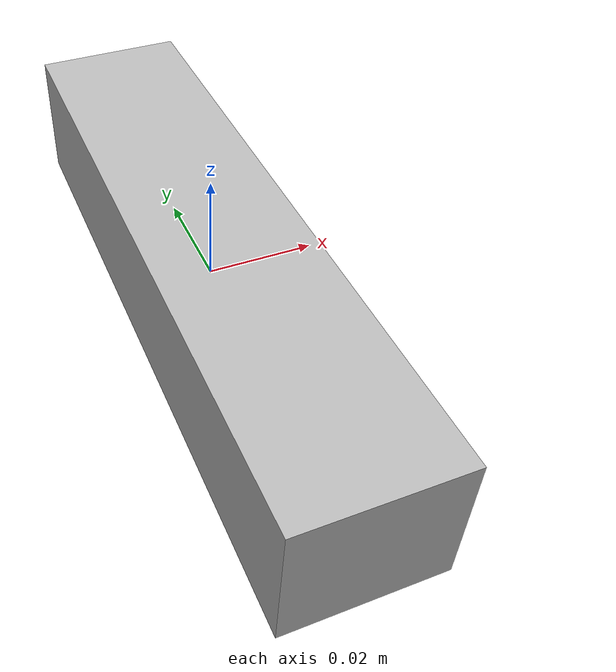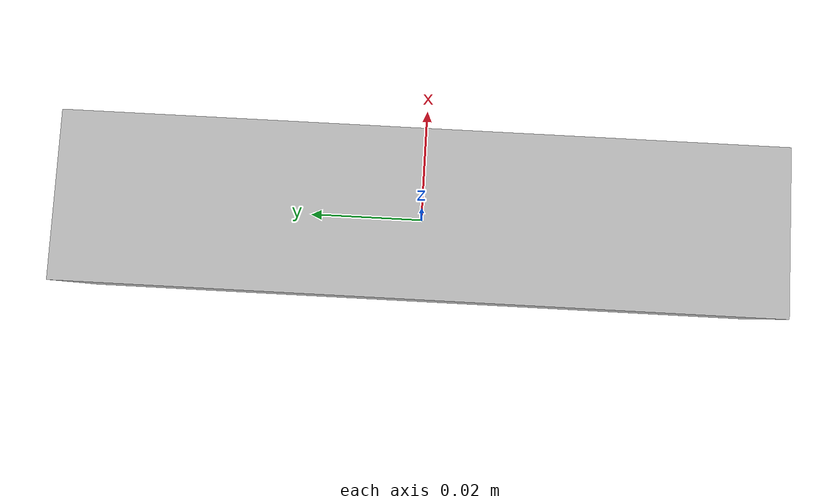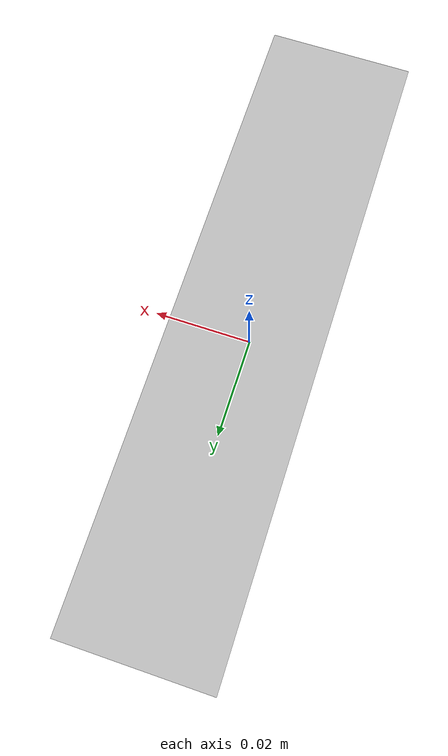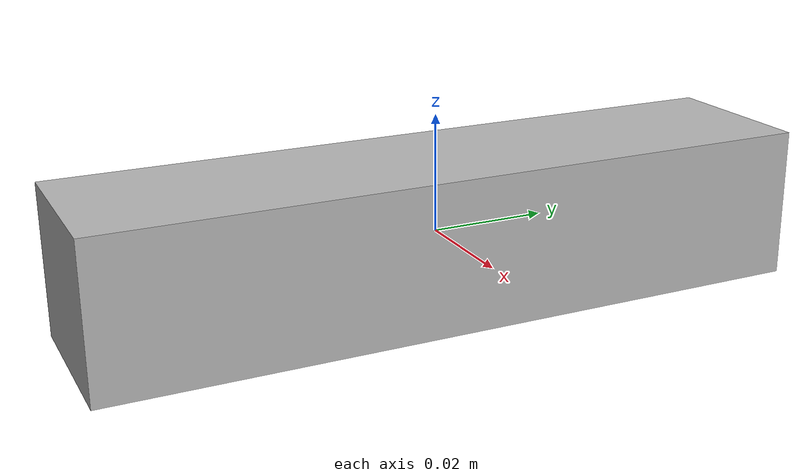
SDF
<?xml version='1.0'?>
<sdf version='1.9'>
    <model name='Realsense d455'>
        <!--    Realsense d455-->
        <!--    https://github.com/IntelRealSense/realsense-ros/blob/ros2-development/realsense2_description/urdf/_d455.urdf.xacro-->
        <link name="camera_link">
            <pose>0 0 0 -1.57 0 -1.57</pose>
            <inertial>
                <mass>0.000013</mass>
                <inertia>
                    <ixx>0.00001</ixx>
                    <iyy>0.00001</iyy>
                    <izz>0.00001</izz>
                </inertia>
            </inertial>
            <visual name="camera_link_visual">
                <geometry>
                    <box>
                        <size>0.124 0.026 0.029</size>
                    </box>
                </geometry>
            </visual>
            <collision name="camera_link_collision">
                <geometry>
                    <box>
                        <size>0.124 0.026 0.029</size>
                    </box>
                </geometry>
            </collision>
            <sensor name="rgbd_camera" type="rgbd_camera">
                <pose>0 0 0 0 -1.57 1.57</pose>
                <update_rate>30</update_rate>
                <always_on>1</always_on>
                <topic>realsense_d455</topic>
                <gz_frame_id>camera_link</gz_frame_id>
                <!-- https://support.intelrealsense.com/hc/en-us/community/posts/24151717597971-some-information-needed-about-D455 -->
                <camera>
                    <horizontal_fov>1.583</horizontal_fov>
                    <image>
                        <width>1280</width>
                        <height>720</height>
                        <format>R8G8B8</format>
                    </image>
                    <clip>
                        <near>0.6</near>
                        <far>6</far>
                    </clip>
                    <distortion>
                        <k1>0.0</k1>
                        <k2>0.0</k2>
                        <k3>0.0</k3>
                        <p1>0.0</p1>
                        <p2>0.0</p2>
                        <center>0.5 0.5</center>
                    </distortion>
                    <lens>
                        <intrinsics>
                            <fx>631.854</fx>
                            <fy>630.2352</fy>
                            <cx>320.5</cx>
                            <cy>240.5</cy>
                            <s>0</s>
                        </intrinsics>
                    </lens>
                    <noise>
                        <type>gaussian</type>
                        <mean>0</mean>
                        <stddev>0.007</stddev>
                    </noise>
                    <depth_camera>
                        <clip>
                            <near>0.6</near>
                            <far>6</far>
                        </clip>
                    </depth_camera>
                </camera>
            </sensor>
        </link>

        <link name="camera_imu_optical_frame">
            <inertial>
                <mass>0.00001</mass>
                <inertia>
                    <ixx>0.00001</ixx>
                    <iyy>0.00001</iyy>
                    <izz>0.00001</izz>
                </inertia>
            </inertial>
            <sensor name="d455_imu_sensor" type="imu">
                <gz_frame_id>camera_imu_optical_frame</gz_frame_id>
                <pose>0 0 0 0 0 0</pose>
                <always_on>true</always_on>
                <update_rate>200</update_rate>
                <visualize>true</visualize>
                <topic>camera/imu</topic>
                <imu>
                    <orientation_reference_frame>
                        <localization>ENU</localization>
                    </orientation_reference_frame>
                    <angular_velocity>
                        <x>
                            <noise type="gaussian">
                                <mean>0.0</mean>
                                <stddev>0.0002</stddev>
                                <bias_mean>0.0000075</bias_mean>
                                <bias_stddev>0.0000008</bias_stddev>
                            </noise>
                        </x>
                        <y>
                            <noise type="gaussian">
                                <mean>0.0</mean>
                                <stddev>0.0002</stddev>
                                <bias_mean>0.0000075</bias_mean>
                                <bias_stddev>0.0000008</bias_stddev>
                            </noise>
                        </y>
                        <z>
                            <noise type="gaussian">
                                <mean>0.0</mean>
                                <stddev>0.0002</stddev>
                                <bias_mean>0.0000075</bias_mean>
                                <bias_stddev>0.0000008</bias_stddev>
                            </noise>
                        </z>
                    </angular_velocity>
                    <linear_acceleration>
                        <x>
                            <noise type="gaussian">
                                <mean>0.0</mean>
                                <stddev>0.017</stddev>
                                <bias_mean>0.1</bias_mean>
                                <bias_stddev>0.001</bias_stddev>
                            </noise>
                        </x>
                        <y>
                            <noise type="gaussian">
                                <mean>0.0</mean>
                                <stddev>0.017</stddev>
                                <bias_mean>0.1</bias_mean>
                                <bias_stddev>0.001</bias_stddev>
                            </noise>
                        </y>
                        <z>
                            <noise type="gaussian">
                                <mean>0.0</mean>
                                <stddev>0.017</stddev>
                                <bias_mean>0.1</bias_mean>
                                <bias_stddev>0.001</bias_stddev>
                            </noise>
                        </z>
                    </linear_acceleration>
                </imu>
            </sensor>
        </link>
        <link name="camera_gyro_optical_frame">
            <inertial>
                <mass>0.00001</mass>
                <inertia>
                    <ixx>0.00001</ixx>
                    <iyy>0.00001</iyy>
                    <izz>0.00001</izz>
                </inertia>
            </inertial>
        </link>
        <link name="camera_accel_optical_frame">
            <inertial>
                <mass>0.00001</mass>
                <inertia>
                    <ixx>0.00001</ixx>
                    <iyy>0.00001</iyy>
                    <izz>0.00001</izz>
                </inertia>
            </inertial>
        </link>
        <link name="camera_gyro_frame">
            <inertial>
                <mass>0.00001</mass>
                <inertia>
                    <ixx>0.00001</ixx>
                    <iyy>0.00001</iyy>
                    <izz>0.00001</izz>
                </inertia>
            </inertial>
        </link>
        <link name="camera_accel_frame">
            <inertial>
                <mass>0.00001</mass>
                <inertia>
                    <ixx>0.00001</ixx>
                    <iyy>0.00001</iyy>
                    <izz>0.00001</izz>
                </inertia>
            </inertial>
        </link>

        <joint name="camera_imu_optical_joint" type="fixed">
            <pose>0 0 0 0 0 0</pose>
            <parent>camera_gyro_optical_frame</parent>
            <child>camera_imu_optical_frame</child>
        </joint>

        <joint name="camera_gyro_optical_joint" type="fixed">
            <pose>0 0 0 -1.57 0 -1.57</pose>
            <parent>camera_gyro_frame</parent>
            <child>camera_gyro_optical_frame</child>
        </joint>

        <joint name="camera_gyro_joint" type="fixed">
            <pose>-0.01602 -0.03022 0.0074 0 0 0</pose>
            <parent>camera_link</parent>
            <child>camera_gyro_frame</child>
        </joint>

        <joint name="camera_accel_joint" type="fixed">
            <pose>-0.01602 -0.03022 0.0074 0 0 0</pose>
            <parent>camera_link</parent>
            <child>camera_accel_frame</child>
        </joint>

        <joint name="camera_accel_optical_joint" type="fixed">
            <pose>0 0 0 -1.57 0 -1.57</pose>
            <parent>camera_accel_frame</parent>
            <child>camera_accel_optical_frame</child>
        </joint>
    </model>
</sdf>
